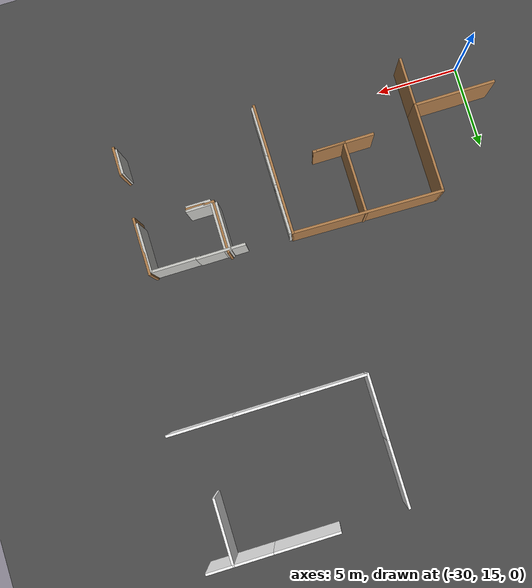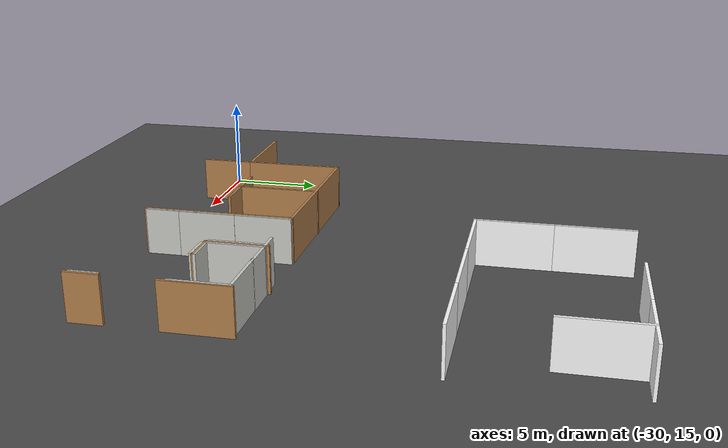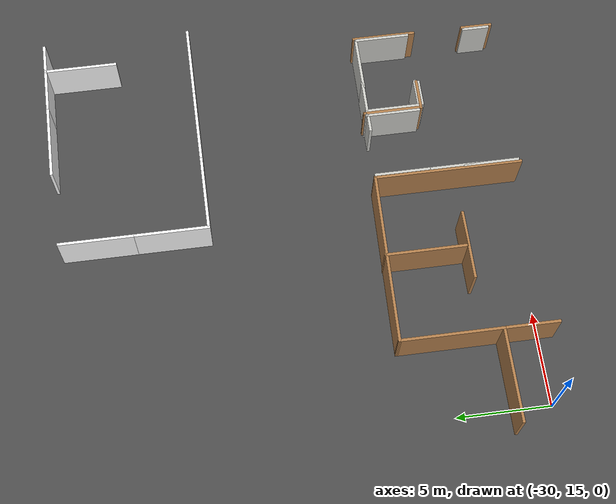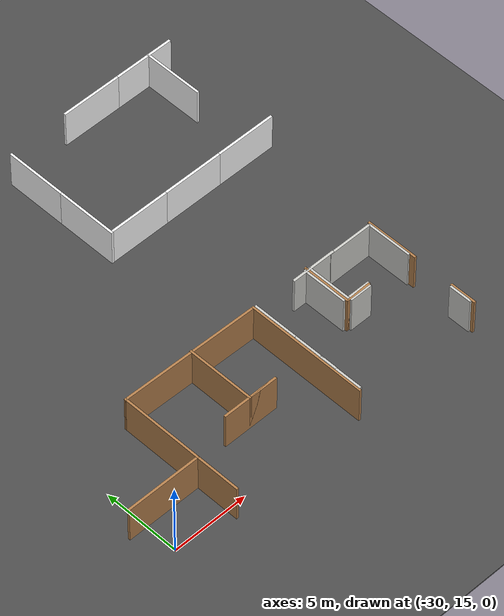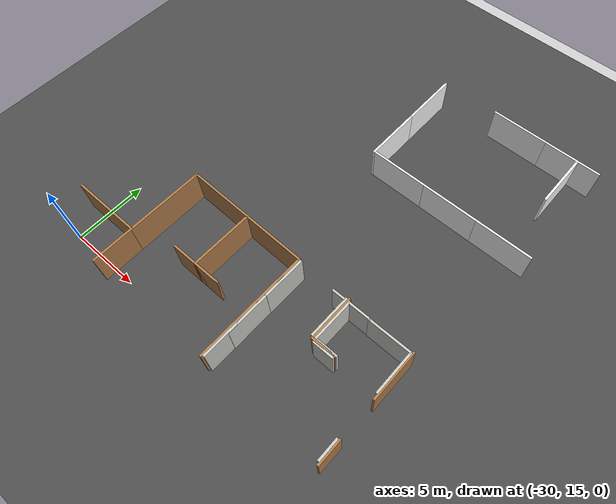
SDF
<sdf version="1.6">
 <world name="default">
  <model name="ground_plane">
   <static>1</static>
   <link name="link">
    <collision name="collision">
     <geometry><plane><normal>0 0 1</normal><size>100 100</size></plane></geometry>
     <surface><friction><ode><mu>100</mu><mu2>50</mu2></ode></friction></surface>
    </collision>
    <visual name="visual">
     <cast_shadows>0</cast_shadows>
     <geometry><plane><normal>0 0 1</normal><size>100 100</size></plane></geometry>
     <material>
      <script><uri>file://media/materials/scripts/gazebo.material</uri><name>Gazebo/Grey</name></script>
     </material>
    </visual>
   </link>
  </model>
  <model name="asphalt_plane">
   <static>1</static>
   <link name="link">
    <collision name="collision"><geometry><box><size>100 100 0.1</size></box></geometry></collision>
    <visual name="visual">
     <cast_shadows>0</cast_shadows>
     <geometry><box><size>100 100 0.1</size></box></geometry>
     <material>
      <script>
       <uri>model://asphalt_plane/materials/scripts</uri>
       <uri>model://asphalt_plane/materials/textures</uri>
       <name>vrc/asphalt</name>
      </script>
     </material>
    </visual>
   </link>
  </model>
  <model name="Hard_wall_wall_6_clone_12">
   <pose>-10.1874 22.0907 0 0 -0 1.57079</pose>
   <link name="Wall_0">
    <collision name="Wall_0_Collision">
     <geometry><box><size>3 0.15 2.5</size></box></geometry>
     <pose>0 0 1.25 0 -0 0</pose>
    </collision>
    <visual name="Wall_0_Visual">
     <pose>0 0 1.25 0 -0 0</pose>
     <geometry><box><size>3 0.15 2.5</size></box></geometry>
     <material>
      <script><uri>file://media/materials/scripts/gazebo.material</uri><name>Gazebo/CeilingTiled</name></script>
      <ambient>1 1 1 1</ambient>
     </material>
     <meta><layer>0</layer></meta>
    </visual>
    <pose>0 0 0 0 -0 1.5708</pose>
   </link>
   <static>1</static>
  </model>
  <model name="Hard_wall_wall_6_clone_13">
   <pose>-12.8935 22.121 0 0 -0 1.57079</pose>
   <link name="Wall_0">
    <collision name="Wall_0_Collision">
     <geometry><box><size>3 0.15 2.5</size></box></geometry>
     <pose>0 0 1.25 0 -0 0</pose>
    </collision>
    <visual name="Wall_0_Visual">
     <pose>0 0 1.25 0 -0 0</pose>
     <geometry><box><size>3 0.15 2.5</size></box></geometry>
     <material>
      <script><uri>file://media/materials/scripts/gazebo.material</uri><name>Gazebo/CeilingTiled</name></script>
      <ambient>1 1 1 1</ambient>
     </material>
     <meta><layer>0</layer></meta>
    </visual>
    <pose>0 0 0 0 -0 1.5708</pose>
   </link>
   <static>1</static>
  </model>
  <model name="Hard_wall_wall_10">
   <pose>-17.0452 17.8135 0 0 -0 0</pose>
   <link name="Wall_0">
    <collision name="Wall_0_Collision">
     <geometry><box><size>3 0.15 2.5</size></box></geometry>
     <pose>0 0 1.25 0 -0 0</pose>
    </collision>
    <visual name="Wall_0_Visual">
     <pose>0 0 1.25 0 -0 0</pose>
     <geometry><box><size>3 0.15 2.5</size></box></geometry>
     <material>
      <script><uri>file://media/materials/scripts/gazebo.material</uri><name>Gazebo/CeilingTiled</name></script>
      <ambient>1 1 1 1</ambient>
     </material>
     <meta><layer>0</layer></meta>
    </visual>
    <pose>0 0 0 0 -0 1.5708</pose>
   </link>
   <static>1</static>
  </model>
  <model name="Hard_wall_wall_11">
   <pose>-17.0415 20.8179 0 0 -0 0</pose>
   <link name="Wall_0">
    <collision name="Wall_0_Collision">
     <geometry><box><size>3 0.15 2.5</size></box></geometry>
     <pose>0 0 1.25 0 -0 0</pose>
    </collision>
    <visual name="Wall_0_Visual">
     <pose>0 0 1.25 0 -0 0</pose>
     <geometry><box><size>3 0.15 2.5</size></box></geometry>
     <material>
      <script><uri>file://media/materials/scripts/gazebo.material</uri><name>Gazebo/CeilingTiled</name></script>
      <ambient>1 1 1 1</ambient>
     </material>
     <meta><layer>0</layer></meta>
    </visual>
    <pose>0 0 0 0 -0 1.5708</pose>
   </link>
   <static>1</static>
  </model>
  <model name="Hard_wall_wall_12">
   <pose>-8.68965 20.6247 0 0 -0 0</pose>
   <link name="Wall_0">
    <collision name="Wall_0_Collision">
     <geometry><box><size>3 0.15 2.5</size></box></geometry>
     <pose>0 0 1.25 0 -0 0</pose>
    </collision>
    <visual name="Wall_0_Visual">
     <pose>0 0 1.25 0 -0 0</pose>
     <geometry><box><size>3 0.15 2.5</size></box></geometry>
     <material>
      <script><uri>file://media/materials/scripts/gazebo.material</uri><name>Gazebo/CeilingTiled</name></script>
      <ambient>1 1 1 1</ambient>
     </material>
     <meta><layer>0</layer></meta>
    </visual>
    <pose>0 0 0 0 -0 1.5708</pose>
   </link>
   <static>1</static>
  </model>
  <model name="Hard_wall_wall_13">
   <pose>-17.0666 16.0035 0 0 -0 0</pose>
   <link name="Wall_0">
    <collision name="Wall_0_Collision">
     <geometry><box><size>3 0.15 2.5</size></box></geometry>
     <pose>0 0 1.25 0 -0 0</pose>
    </collision>
    <visual name="Wall_0_Visual">
     <pose>0 0 1.25 0 -0 0</pose>
     <geometry><box><size>3 0.15 2.5</size></box></geometry>
     <material>
      <script><uri>file://media/materials/scripts/gazebo.material</uri><name>Gazebo/CeilingTiled</name></script>
      <ambient>1 1 1 1</ambient>
     </material>
     <meta><layer>0</layer></meta>
    </visual>
    <pose>0 0 0 0 -0 1.5708</pose>
   </link>
   <static>1</static>
  </model>
  <model name="Hard_wall_wall_14">
   <pose>-13.1615 20.7156 0 0 -0 0</pose>
   <link name="Wall_0">
    <collision name="Wall_0_Collision">
     <geometry><box><size>3 0.15 2.5</size></box></geometry>
     <pose>0 0 1.25 0 -0 0</pose>
    </collision>
    <visual name="Wall_0_Visual">
     <pose>0 0 1.25 0 -0 0</pose>
     <geometry><box><size>3 0.15 2.5</size></box></geometry>
     <material>
      <script><uri>file://media/materials/scripts/gazebo.material</uri><name>Gazebo/CeilingTiled</name></script>
      <ambient>1 1 1 1</ambient>
     </material>
     <meta><layer>0</layer></meta>
    </visual>
    <pose>0 0 0 0 -0 1.5708</pose>
   </link>
   <static>1</static>
  </model>
  <model name="Medium_wall_wall_2_clone_0">
   <pose>-8.86366 31.3819 0 0 -0 0</pose>
   <link name="Wall_0">
    <collision name="Wall_0_Collision">
     <geometry><box><size>4 0.15 2.5</size></box></geometry>
     <pose>0 0 1.25 0 -0 0</pose>
    </collision>
    <visual name="Wall_0_Visual">
     <pose>0 0 1.25 0 -0 0</pose>
     <geometry><box><size>4 0.15 2.5</size></box></geometry>
     <material>
      <script><uri>file://media/materials/scripts/gazebo.material</uri><name>Gazebo/Medium_walls</name></script>
      <ambient>1 1 1 1</ambient>
     </material>
     <meta><layer>0</layer></meta>
    </visual>
   </link>
   <static>1</static>
  </model>
  <model name="Medium_wall_wall_2_clone_1">
   <pose>-12.8637 31.3819 0 0 -0 0</pose>
   <link name="Wall_0">
    <collision name="Wall_0_Collision">
     <geometry><box><size>4 0.15 2.5</size></box></geometry>
     <pose>0 0 1.25 0 -0 0</pose>
    </collision>
    <visual name="Wall_0_Visual">
     <pose>0 0 1.25 0 -0 0</pose>
     <geometry><box><size>4 0.15 2.5</size></box></geometry>
     <material>
      <script><uri>file://media/materials/scripts/gazebo.material</uri><name>Gazebo/Medium_walls</name></script>
      <ambient>1 1 1 1</ambient>
     </material>
     <meta><layer>0</layer></meta>
    </visual>
   </link>
   <static>1</static>
  </model>
  <model name="Medium_wall_wall_2_clone_2">
   <pose>-16.8637 31.3819 0 0 -0 0</pose>
   <link name="Wall_0">
    <collision name="Wall_0_Collision">
     <geometry><box><size>4 0.15 2.5</size></box></geometry>
     <pose>0 0 1.25 0 -0 0</pose>
    </collision>
    <visual name="Wall_0_Visual">
     <pose>0 0 1.25 0 -0 0</pose>
     <geometry><box><size>4 0.15 2.5</size></box></geometry>
     <material>
      <script><uri>file://media/materials/scripts/gazebo.material</uri><name>Gazebo/Medium_walls</name></script>
      <ambient>1 1 1 1</ambient>
     </material>
     <meta><layer>0</layer></meta>
    </visual>
   </link>
   <static>1</static>
  </model>
  <model name="Medium_wall_wall_2_clone_5">
   <pose>-8.86366 39.3819 0 0 -0 0</pose>
   <link name="Wall_0">
    <collision name="Wall_0_Collision">
     <geometry><box><size>4 0.15 2.5</size></box></geometry>
     <pose>0 0 1.25 0 -0 0</pose>
    </collision>
    <visual name="Wall_0_Visual">
     <pose>0 0 1.25 0 -0 0</pose>
     <geometry><box><size>4 0.15 2.5</size></box></geometry>
     <material>
      <script><uri>file://media/materials/scripts/gazebo.material</uri><name>Gazebo/Medium_walls</name></script>
      <ambient>1 1 1 1</ambient>
     </material>
     <meta><layer>0</layer></meta>
    </visual>
   </link>
   <static>1</static>
  </model>
  <model name="Medium_wall_wall_2_clone_6">
   <pose>-12.8637 39.3819 0 0 -0 0</pose>
   <link name="Wall_0">
    <collision name="Wall_0_Collision">
     <geometry><box><size>4 0.15 2.5</size></box></geometry>
     <pose>0 0 1.25 0 -0 0</pose>
    </collision>
    <visual name="Wall_0_Visual">
     <pose>0 0 1.25 0 -0 0</pose>
     <geometry><box><size>4 0.15 2.5</size></box></geometry>
     <material>
      <script><uri>file://media/materials/scripts/gazebo.material</uri><name>Gazebo/Medium_walls</name></script>
      <ambient>1 1 1 1</ambient>
     </material>
     <meta><layer>0</layer></meta>
    </visual>
   </link>
   <static>1</static>
  </model>
  <model name="Medium_wall_wall_3_clone_0">
   <pose>-18.914 33.2967 0 0 -0 1.57079</pose>
   <link name="Wall_0">
    <collision name="Wall_0_Collision">
     <geometry><box><size>4 0.15 2.5</size></box></geometry>
     <pose>0 0 1.25 0 -0 0</pose>
    </collision>
    <visual name="Wall_0_Visual">
     <pose>0 0 1.25 0 -0 0</pose>
     <geometry><box><size>4 0.15 2.5</size></box></geometry>
     <material>
      <script><uri>file://media/materials/scripts/gazebo.material</uri><name>Gazebo/Medium_walls</name></script>
      <ambient>1 1 1 1</ambient>
     </material>
     <meta><layer>0</layer></meta>
    </visual>
   </link>
   <static>1</static>
  </model>
  <model name="Medium_wall_wall_3_clone_1">
   <pose>-18.914 37.2967 0 0 -0 1.57079</pose>
   <link name="Wall_0">
    <collision name="Wall_0_Collision">
     <geometry><box><size>4 0.15 2.5</size></box></geometry>
     <pose>0 0 1.25 0 -0 0</pose>
    </collision>
    <visual name="Wall_0_Visual">
     <pose>0 0 1.25 0 -0 0</pose>
     <geometry><box><size>4 0.15 2.5</size></box></geometry>
     <material>
      <script><uri>file://media/materials/scripts/gazebo.material</uri><name>Gazebo/Medium_walls</name></script>
      <ambient>1 1 1 1</ambient>
     </material>
     <meta><layer>0</layer></meta>
    </visual>
   </link>
   <static>1</static>
  </model>
  <model name="Medium_wall_wall_3_clone_3">
   <pose>-8.49204 37.4632 0 0 -0 1.57079</pose>
   <link name="Wall_0">
    <collision name="Wall_0_Collision">
     <geometry><box><size>4 0.15 2.5</size></box></geometry>
     <pose>0 0 1.25 0 -0 0</pose>
    </collision>
    <visual name="Wall_0_Visual">
     <pose>0 0 1.25 0 -0 0</pose>
     <geometry><box><size>4 0.15 2.5</size></box></geometry>
     <material>
      <script><uri>file://media/materials/scripts/gazebo.material</uri><name>Gazebo/Medium_walls</name></script>
      <ambient>1 1 1 1</ambient>
     </material>
     <meta><layer>0</layer></meta>
    </visual>
   </link>
   <static>1</static>
  </model>
  <model name="Soft_wall_v1_1">
   <pose>-14.3408 -3.86286 0 0 -0 0</pose>
   <link name="Wall_11">
    <collision name="Wall_11_Collision">
     <geometry><box><size>5 0.15 2.5</size></box></geometry>
     <pose>0 0 1.25 0 -0 0</pose>
    </collision>
    <visual name="Wall_11_Visual">
     <pose>0 0 1.25 0 -0 0</pose>
     <geometry><box><size>5 0.15 2.5</size></box></geometry>
     <material>
      <script><uri>file://media/materials/scripts/gazebo.material</uri><name>Gazebo/Wood</name></script>
      <ambient>1 1 1 1</ambient>
     </material>
     <meta><layer>0</layer></meta>
    </visual>
    <pose>-14.3818 20.997 0 0 -0 0</pose>
   </link>
   <link name="Wall_119">
    <collision name="Wall_119_Collision">
     <geometry><box><size>0.15 0.15 2.5</size></box></geometry>
     <pose>0 0 1.25 0 -0 0</pose>
    </collision>
    <visual name="Wall_119_Visual">
     <pose>0 0 1.25 0 -0 0</pose>
     <geometry><box><size>0.15 0.15 2.5</size></box></geometry>
     <material>
      <script><uri>file://media/materials/scripts/gazebo.material</uri><name>Gazebo/Wood</name></script>
      <ambient>1 1 1 1</ambient>
     </material>
     <meta><layer>0</layer></meta>
    </visual>
    <pose>1.0355 26.1459 0 0 -0 0</pose>
   </link>
   <link name="Wall_120">
    <collision name="Wall_120_Collision">
     <geometry><box><size>3.25 0.15 2.5</size></box></geometry>
     <pose>0 0 1.25 0 -0 0</pose>
    </collision>
    <visual name="Wall_120_Visual">
     <pose>0 0 1.25 0 -0 0</pose>
     <geometry><box><size>3.25 0.15 2.5</size></box></geometry>
     <material>
      <script><uri>file://media/materials/scripts/gazebo.material</uri><name>Gazebo/Wood</name></script>
      <ambient>1 1 1 1</ambient>
     </material>
     <meta><layer>0</layer></meta>
    </visual>
    <pose>1.0355 24.5959 0 0 0 -1.5708</pose>
   </link>
   <link name="Wall_121">
    <collision name="Wall_121_Collision">
     <geometry><box><size>1.75 0.15 2.5</size></box></geometry>
     <pose>0 0 1.25 0 -0 0</pose>
    </collision>
    <visual name="Wall_121_Visual">
     <pose>0 0 1.25 0 -0 0</pose>
     <geometry><box><size>1.75 0.15 2.5</size></box></geometry>
     <material>
      <script><uri>file://media/materials/scripts/gazebo.material</uri><name>Gazebo/Wood</name></script>
      <ambient>1 1 1 1</ambient>
     </material>
     <meta><layer>0</layer></meta>
    </visual>
    <pose>1.8355 23.0459 0 0 -0 0</pose>
   </link>
   <link name="Wall_123">
    <collision name="Wall_123_Collision">
     <geometry><box><size>3.5 0.15 2.5</size></box></geometry>
     <pose>0 0 1.25 0 -0 0</pose>
    </collision>
    <visual name="Wall_123_Visual">
     <pose>0 0 1.25 0 -0 0</pose>
     <geometry><box><size>3.5 0.15 2.5</size></box></geometry>
     <material>
      <script><uri>file://media/materials/scripts/gazebo.material</uri><name>Gazebo/Wood</name></script>
      <ambient>1 1 1 1</ambient>
     </material>
     <meta><layer>0</layer></meta>
    </visual>
    <pose>5.75508 24.3704 0 0 0 -1.5708</pose>
   </link>
   <link name="Wall_127">
    <collision name="Wall_127_Collision">
     <geometry><box><size>4.5 0.15 2.5</size></box></geometry>
     <pose>0 0 1.25 0 -0 0</pose>
    </collision>
    <visual name="Wall_127_Visual">
     <pose>0 0 1.25 0 -0 0</pose>
     <geometry><box><size>4.5 0.15 2.5</size></box></geometry>
     <material>
      <script><uri>file://media/materials/scripts/gazebo.material</uri><name>Gazebo/Wood</name></script>
      <ambient>1 1 1 1</ambient>
     </material>
     <meta><layer>0</layer></meta>
    </visual>
    <pose>-7.28883 24.1165 0 0 0 -1.5708</pose>
   </link>
   <link name="Wall_128">
    <collision name="Wall_128_Collision">
     <geometry><box><size>2 0.15 2.5</size></box></geometry>
     <pose>0 0 1.25 0 -0 0</pose>
    </collision>
    <visual name="Wall_128_Visual">
     <pose>0 0 1.25 0 -0 0</pose>
     <geometry><box><size>2 0.15 2.5</size></box></geometry>
     <material>
      <script><uri>file://media/materials/scripts/gazebo.material</uri><name>Gazebo/Wood</name></script>
      <ambient>1 1 1 1</ambient>
     </material>
     <meta><layer>0</layer></meta>
    </visual>
    <pose>-6.36383 21.9415 0 0 -0 0</pose>
   </link>
   <link name="Wall_129">
    <collision name="Wall_129_Collision">
     <geometry><box><size>3.75 0.15 2.5</size></box></geometry>
     <pose>0 0 1.25 0 -0 0</pose>
    </collision>
    <visual name="Wall_129_Visual">
     <pose>0 0 1.25 0 -0 0</pose>
     <geometry><box><size>3.75 0.15 2.5</size></box></geometry>
     <material>
      <script><uri>file://media/materials/scripts/gazebo.material</uri><name>Gazebo/Wood</name></script>
      <ambient>1 1 1 1</ambient>
     </material>
     <meta><layer>0</layer></meta>
    </visual>
    <pose>-7.23883 21.9415 0 0 -0 3.14159</pose>
   </link>
   <link name="Wall_13">
    <collision name="Wall_13_Collision">
     <geometry><box><size>5.5 0.15 2.5</size></box></geometry>
     <pose>0 0 1.25 0 -0 0</pose>
    </collision>
    <visual name="Wall_13_Visual">
     <pose>0 0 1.25 0 -0 0</pose>
     <geometry><box><size>5.5 0.15 2.5</size></box></geometry>
     <material>
      <script><uri>file://media/materials/scripts/gazebo.material</uri><name>Gazebo/Wood</name></script>
      <ambient>1 1 1 1</ambient>
     </material>
     <meta><layer>0</layer></meta>
    </visual>
    <pose>-11.9568 23.672 0 0 -0 1.5708</pose>
   </link>
   <link name="Wall_131">
    <collision name="Wall_131_Collision">
     <geometry><box><size>8 0.15 2.5</size></box></geometry>
     <pose>0 0 1.25 0 -0 0</pose>
    </collision>
    <visual name="Wall_131_Visual">
     <pose>0 0 1.25 0 -0 0</pose>
     <geometry><box><size>8 0.15 2.5</size></box></geometry>
     <material>
      <script><uri>file://media/materials/scripts/gazebo.material</uri><name>Gazebo/Wood</name></script>
      <ambient>1 1 1 1</ambient>
     </material>
     <meta><layer>0</layer></meta>
    </visual>
    <pose>-2.85679 22.2374 0 0 0 -1.5708</pose>
   </link>
   <link name="Wall_133">
    <collision name="Wall_133_Collision">
     <geometry><box><size>1.75 0.15 2.5</size></box></geometry>
     <pose>0 0 1.25 0 -0 0</pose>
    </collision>
    <visual name="Wall_133_Visual">
     <pose>0 0 1.25 0 -0 0</pose>
     <geometry><box><size>1.75 0.15 2.5</size></box></geometry>
     <material>
      <script><uri>file://media/materials/scripts/gazebo.material</uri><name>Gazebo/Wood</name></script>
      <ambient>1 1 1 1</ambient>
     </material>
     <meta><layer>0</layer></meta>
    </visual>
    <pose>5.74321 19.1124 0 0 -0 1.5708</pose>
   </link>
   <link name="Wall_136">
    <collision name="Wall_136_Collision">
     <geometry><box><size>3 0.15 2.5</size></box></geometry>
     <pose>0 0 1.25 0 -0 0</pose>
    </collision>
    <visual name="Wall_136_Visual">
     <pose>0 0 1.25 0 -0 0</pose>
     <geometry><box><size>3 0.15 2.5</size></box></geometry>
     <material>
      <script><uri>file://media/materials/scripts/gazebo.material</uri><name>Gazebo/Wood</name></script>
      <ambient>1 1 1 1</ambient>
     </material>
     <meta><layer>0</layer></meta>
    </visual>
    <pose>-11.9568 19.572 0 0 0 -1.5708</pose>
   </link>
   <link name="Wall_14">
    <collision name="Wall_14_Collision">
     <geometry><box><size>9.25187 0.15 2.5</size></box></geometry>
     <pose>0 0 1.25 0 -0 0</pose>
    </collision>
    <visual name="Wall_14_Visual">
     <pose>0 0 1.25 0 -0 0</pose>
     <geometry><box><size>9.25187 0.15 2.5</size></box></geometry>
     <material>
      <script><uri>file://media/materials/scripts/gazebo.material</uri><name>Gazebo/Wood</name></script>
      <ambient>1 1 1 1</ambient>
     </material>
     <meta><layer>0</layer></meta>
    </visual>
    <pose>-7.40679 26.2547 0 0 0 -0.020281</pose>
   </link>
   <static>1</static>
  </model>
  <model name="Hard_wall_wall_6_clone_8_clone_0">
   <pose>-8.71898 15.3076 0 0 -0 0</pose>
   <link name="Wall_0">
    <collision name="Wall_0_Collision">
     <geometry><box><size>1.5 0.15 2.5</size></box></geometry>
     <pose>0 0 1.25 0 -0 0</pose>
    </collision>
    <visual name="Wall_0_Visual">
     <pose>0 0 1.25 0 -0 0</pose>
     <geometry><box><size>1.5 0.15 2.5</size></box></geometry>
     <material>
      <script><uri>file://media/materials/scripts/gazebo.material</uri><name>Gazebo/CeilingTiled</name></script>
      <ambient>1 1 1 1</ambient>
     </material>
     <meta><layer>0</layer></meta>
    </visual>
    <pose>0 0 0 0 -0 1.5708</pose>
   </link>
   <static>1</static>
  </model>
  <model name="Hard_wall_wall_14_clone">
   <pose>-13.4428 20.7615 0 0 -0 0</pose>
   <link name="Wall_0">
    <collision name="Wall_0_Collision">
     <geometry><box><size>3 0.15 2.5</size></box></geometry>
     <pose>0 0 1.25 0 -0 0</pose>
    </collision>
    <visual name="Wall_0_Visual">
     <pose>0 0 1.25 0 -0 0</pose>
     <geometry><box><size>3 0.15 2.5</size></box></geometry>
     <material>
      <script><uri>file://media/materials/scripts/gazebo.material</uri><name>Gazebo/CeilingTiled</name></script>
      <ambient>1 1 1 1</ambient>
     </material>
     <meta><layer>0</layer></meta>
    </visual>
    <pose>0 0 0 0 -0 1.5708</pose>
   </link>
   <static>1</static>
  </model>
  <model name="Hard_wall_wall_6_clone_8_clone_2">
   <pose>-12.3418 19.2744 0 0 -0 1.57079</pose>
   <link name="Wall_0">
    <collision name="Wall_0_Collision">
     <geometry><box><size>1.5 0.15 2.5</size></box></geometry>
     <pose>0 0 1.25 0 -0 0</pose>
    </collision>
    <visual name="Wall_0_Visual">
     <pose>0 0 1.25 0 -0 0</pose>
     <geometry><box><size>1.5 0.15 2.5</size></box></geometry>
     <material>
      <script><uri>file://media/materials/scripts/gazebo.material</uri><name>Gazebo/CeilingTiled</name></script>
      <ambient>1 1 1 1</ambient>
     </material>
     <meta><layer>0</layer></meta>
    </visual>
    <pose>0 0 0 0 -0 1.5708</pose>
   </link>
   <static>1</static>
  </model>
  <model name="Hard_wall_wall_6_clone_8_clone_3">
   <pose>-12.4201 19.0695 0 0 -0 1.57079</pose>
   <link name="Wall_0">
    <collision name="Wall_0_Collision">
     <geometry><box><size>1.5 0.15 2.5</size></box></geometry>
     <pose>0 0 1.25 0 -0 0</pose>
    </collision>
    <visual name="Wall_0_Visual">
     <pose>0 0 1.25 0 -0 0</pose>
     <geometry><box><size>1.5 0.15 2.5</size></box></geometry>
     <material>
      <script><uri>file://media/materials/scripts/gazebo.material</uri><name>Gazebo/CeilingTiled</name></script>
      <ambient>1 1 1 1</ambient>
     </material>
     <meta><layer>0</layer></meta>
    </visual>
    <pose>0 0 0 0 -0 1.5708</pose>
   </link>
   <static>1</static>
  </model>
 </world>
</sdf>
